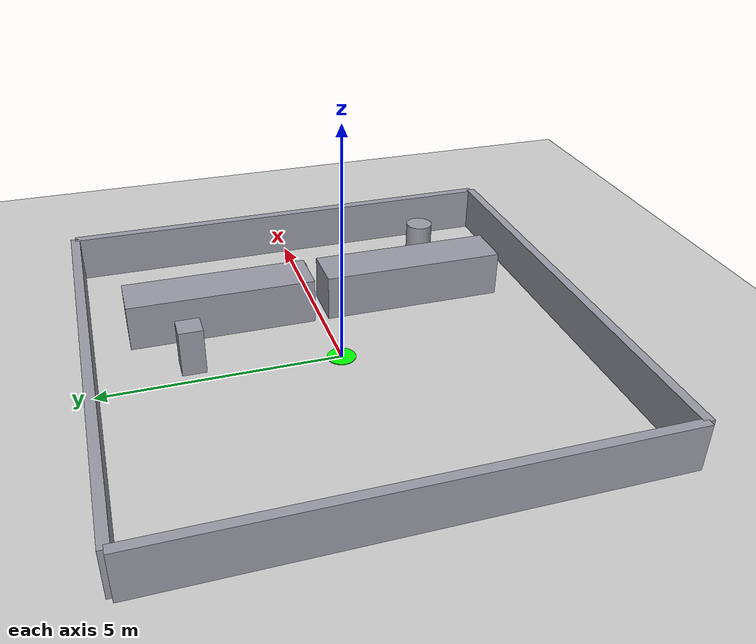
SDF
<?xml version="1.0" ?>
<sdf version="1.6">
  <world name="narrow_passage_world">
    <physics name="default_physics" default="0" type="ode">
      <max_step_size>0.001</max_step_size>
      <real_time_factor>1</real_time_factor>
      <real_time_update_rate>1000</real_time_update_rate>
    </physics>
    <scene>
      <ambient>0.6 0.6 0.6 1</ambient>
      <background>0.7 0.8 0.9 1</background>
      <shadows>true</shadows>
    </scene>
    <light name="sun" type="directional">
      <cast_shadows>true</cast_shadows>
      <pose>0 0 10 0 0 0</pose>
      <diffuse>0.8 0.8 0.8 1</diffuse>
      <specular>0.2 0.2 0.2 1</specular>
      <attenuation>
        <range> 1000</range>
        <constant>0.9</constant>
        <linear>0.01</linear>
        <quadratic>0.001</quadratic>
      </attenuation>
      <direction>-0.4 0.2 -0.9</direction>
    </light>
    <model name="ground_plane">
      <static>true</static>
      <link name="link">
        <collision name="collision">
          <geometry>
            <plane><normal>0 0 1</normal><size>20.0 20.0</size></plane>
          </geometry>
          <surface><friction><ode><mu>100</mu><mu2>50</mu2></ode></friction></surface>
        </collision>
        <visual name="visual">
          <geometry>
            <plane><normal>0 0 1</normal><size>20.0 20.0</size></plane>
          </geometry>
          <material>
            <ambient>0.8 0.8 0.8 1</ambient>
            <diffuse>0.8 0.8 0.8 1</diffuse>
          </material>
        </visual>
      </link>
    </model>
    <model name="passage_geometry">
      <static>true</static>

      <!-- Outer Bounding Box (10x10 meters) -->
      <link name="wall_n"><pose>5 0 0.5 0 0 0</pose><collision name="cn"><geometry><box><size>0.2 10 1</size></box></geometry></collision>
      <visual name="vn"><geometry><box><size>0.2 10 1</size></box>
      </geometry>
        <material>
            <ambient>0.5 0.5 0.55 1</ambient>
            <diffuse>0.6 0.6 0.65 1</diffuse>
        </material>
      </visual>
      </link>
      <link name="wall_s"><pose>-5 0 0.5 0 0 0</pose><collision name="cs"><geometry><box><size>0.2 10 1</size></box></geometry></collision>
      <visual name="vs"><geometry>
      <box><size>0.2 10 1</size></box>
      </geometry>
        <material>
            <ambient>0.5 0.5 0.55 1</ambient>
            <diffuse>0.6 0.6 0.65 1</diffuse>
        </material>
      </visual></link>
      <link name="wall_e"><pose>0 5 0.5 0 0 0</pose><collision name="ce"><geometry><box><size>10 0.2 1</size></box></geometry></collision><visual name="ve"><geometry><box><size>10 0.2 1</size></box></geometry>
              <material>
            <ambient>0.5 0.5 0.55 1</ambient>
            <diffuse>0.6 0.6 0.65 1</diffuse>
        </material>
      </visual></link>
      <link name="wall_w"><pose>0 -5 0.5 0 0 0</pose><collision name="cw"><geometry><box><size>10 0.2 1</size></box></geometry></collision><visual name="vw"><geometry><box><size>10 0.2 1</size></box></geometry>
              <material>
            <ambient>0.5 0.5 0.55 1</ambient>
            <diffuse>0.6 0.6 0.65 1</diffuse>
        </material>
      </visual></link>

      <!-- Left Block (y = 2.1 leaves edge at y = 0.1) -->
      <link name="block_left">
        <pose>2.0 2.15 0.5 0 0 0</pose>
        <collision name="col_bl"><geometry><box><size>1.0 4.0 1</size></box></geometry></collision>
        <visual name="vis_bl"><geometry><box><size>1.0 4.0 1</size></box></geometry>
        <material>
            <ambient>0.5 0.5 0.55 1</ambient>
            <diffuse>0.6 0.6 0.65 1</diffuse>
        </material>
        </visual>
      </link>

      <!-- Right Block (y = -2.1 leaves edge at y = -0.1) -->
      <link name="block_right">
        <pose>2.0 -2.15 0.5 0 0 0</pose>
        <collision name="col_br"><geometry><box><size>1.0 4.0 1</size></box></geometry></collision>
        <visual name="vis_br"><geometry><box><size>1.0 4.0 1</size></box></geometry>
      <material>
        <ambient>0.5 0.5 0.55 1</ambient>
        <diffuse>0.6 0.6 0.65 1</diffuse>
      </material>
        </visual>
      </link>

      <!-- Dummy Features for Cartographer -->
      <link name="feat_1">
        <pose>0.5 3.0 0.5 0 0 0</pose>
        <collision name="cf1"><geometry><box><size>0.5 0.5 1</size></box></geometry></collision>
        <visual name="vf1"><geometry><box><size>0.5 0.5 1</size></box></geometry>
        <material>
            <ambient>0.5 0.5 0.55 1</ambient>
            <diffuse>0.6 0.6 0.65 1</diffuse>
        </material>
        </visual>
      </link>
      <link name="feat_2">
        <pose>3.5 -3.0 0.5 0 0 0</pose>
        <collision name="cf2"><geometry><cylinder><radius>0.3</radius><length>1</length></cylinder></geometry></collision>
        <visual name="vf2"><geometry><cylinder><radius>0.3</radius><length>1</length></cylinder></geometry>
        <material>
            <ambient>0.5 0.5 0.55 1</ambient>
            <diffuse>0.6 0.6 0.65 1</diffuse>
        </material>
        </visual>
      </link>

    </model>

    <!-- Start Marker -->
    <model name="start_marker">
      <static>true</static>
      <pose>0 0 0.01 0 0 0</pose>
      <link name="link">
        <visual name="visual">
          <geometry><cylinder><radius>0.3</radius><length>0.02</length></cylinder></geometry>
          <material><ambient>0 1 0 1</ambient><diffuse>0 1 0 1</diffuse></material>
        </visual>
      </link>
    </model>

     <!-- Goal Marker-->
    <model name="goal_marker">
      <static>true</static>
      <pose>4 0 0.01 0 0 0</pose>
      <link name="link">
        <visual name="visual">
          <geometry><cylinder><radius>0.3</radius><length>0.02</length></cylinder></geometry>
          <material><ambient>1 0 0 1</ambient><diffuse>1 0 0 1</diffuse></material>
        </visual>
      </link>
    </model>
  </world>
</sdf>
